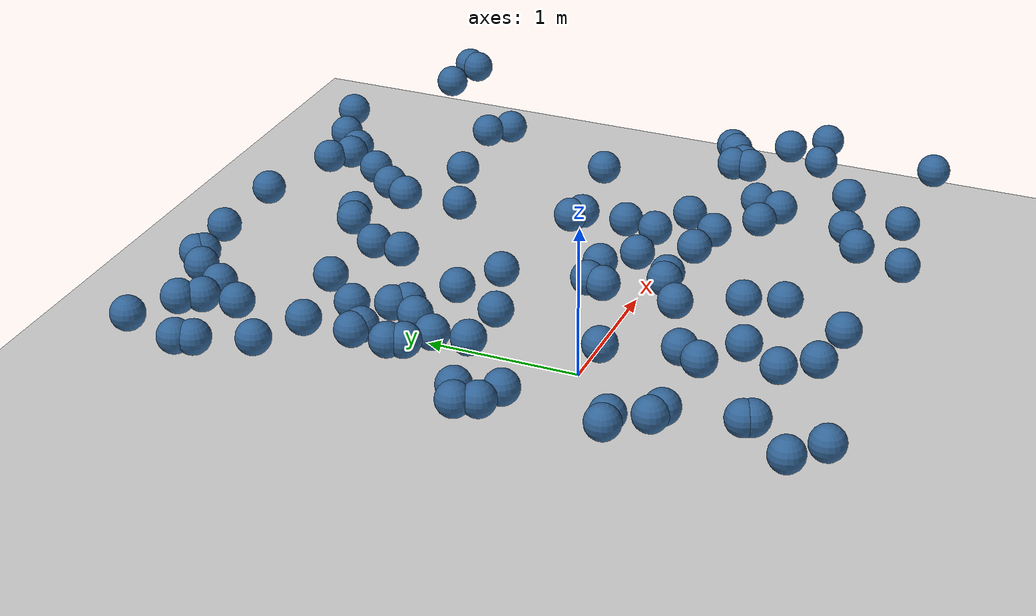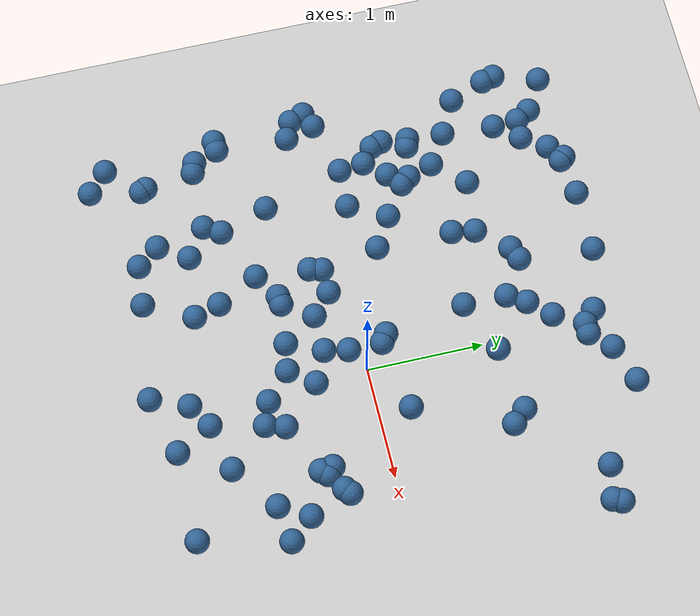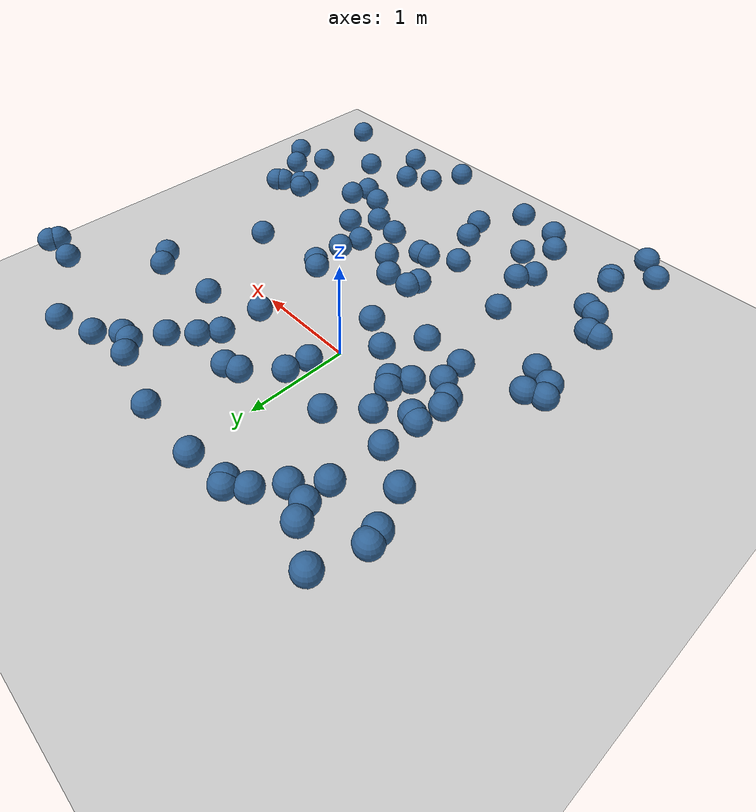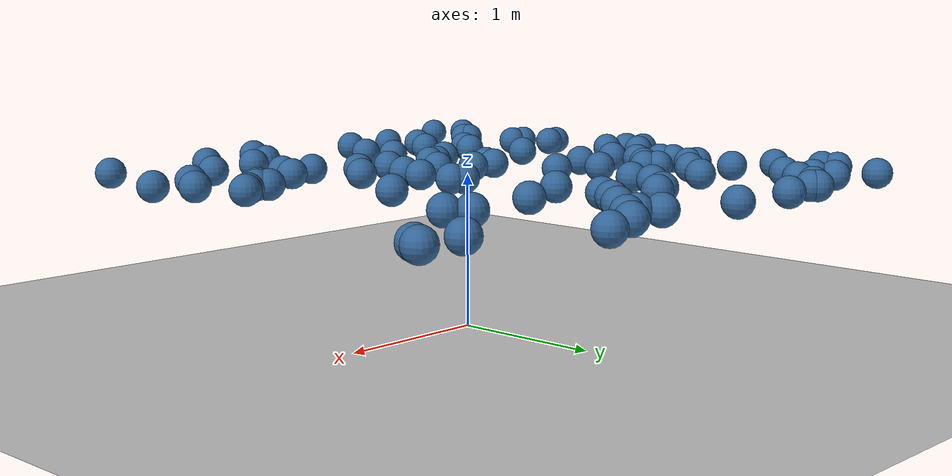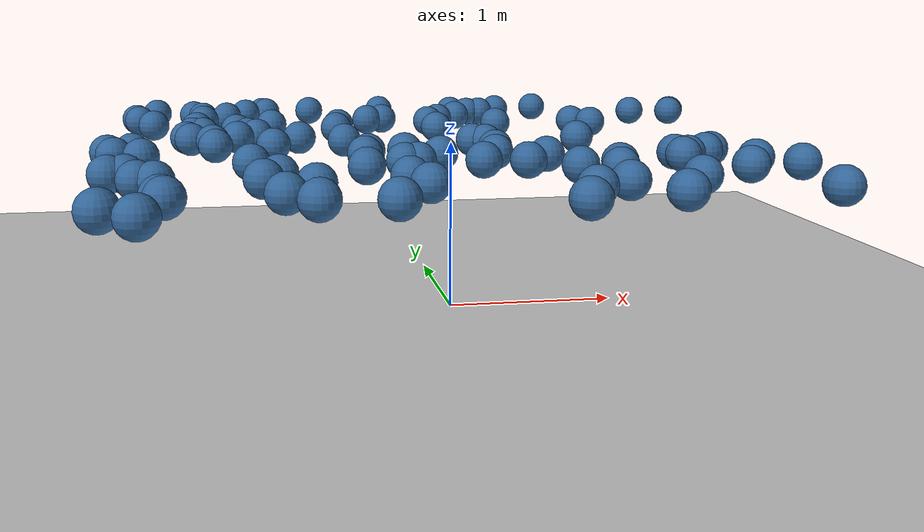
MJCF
<?xml version='1.0' encoding='utf-8'?>
<mujoco model="random_spheres">
  <option timestep="0.01" gravity="0 0 -9.81" />
  <worldbody>
    <geom name="floor" type="plane" size="50 50 0.1" pos="0 0 0" rgba="0.8 0.8 0.8 1" />
    <body name="sphere_0" pos="-0.346 -1.355 1.0">
      <geom type="sphere" size="0.1" rgba="0.2 0.4 0.6 1" />
      <freejoint />
    </body>
    <body name="sphere_1" pos="0.281 -1.854 1.0">
      <geom type="sphere" size="0.1" rgba="0.2 0.4 0.6 1" />
      <freejoint />
    </body>
    <body name="sphere_2" pos="0.045 1.147 1.0">
      <geom type="sphere" size="0.1" rgba="0.2 0.4 0.6 1" />
      <freejoint />
    </body>
    <body name="sphere_3" pos="-1.045 0.075 1.0">
      <geom type="sphere" size="0.1" rgba="0.2 0.4 0.6 1" />
      <freejoint />
    </body>
    <body name="sphere_4" pos="-0.732 1.946 1.0">
      <geom type="sphere" size="0.1" rgba="0.2 0.4 0.6 1" />
      <freejoint />
    </body>
    <body name="sphere_5" pos="1.003 1.976 1.0">
      <geom type="sphere" size="0.1" rgba="0.2 0.4 0.6 1" />
      <freejoint />
    </body>
    <body name="sphere_6" pos="0.758 -0.846 1.0">
      <geom type="sphere" size="0.1" rgba="0.2 0.4 0.6 1" />
      <freejoint />
    </body>
    <body name="sphere_7" pos="0.052 -0.690 1.0">
      <geom type="sphere" size="0.1" rgba="0.2 0.4 0.6 1" />
      <freejoint />
    </body>
    <body name="sphere_8" pos="-0.615 0.854 1.0">
      <geom type="sphere" size="0.1" rgba="0.2 0.4 0.6 1" />
      <freejoint />
    </body>
    <body name="sphere_9" pos="0.430 1.705 1.0">
      <geom type="sphere" size="0.1" rgba="0.2 0.4 0.6 1" />
      <freejoint />
    </body>
    <body name="sphere_10" pos="1.400 -1.055 1.0">
      <geom type="sphere" size="0.1" rgba="0.2 0.4 0.6 1" />
      <freejoint />
    </body>
    <body name="sphere_11" pos="-0.552 -0.358 1.0">
      <geom type="sphere" size="0.1" rgba="0.2 0.4 0.6 1" />
      <freejoint />
    </body>
    <body name="sphere_12" pos="-1.505 1.640 1.0">
      <geom type="sphere" size="0.1" rgba="0.2 0.4 0.6 1" />
      <freejoint />
    </body>
    <body name="sphere_13" pos="-1.401 0.293 1.0">
      <geom type="sphere" size="0.1" rgba="0.2 0.4 0.6 1" />
      <freejoint />
    </body>
    <body name="sphere_14" pos="-1.799 -0.867 1.0">
      <geom type="sphere" size="0.1" rgba="0.2 0.4 0.6 1" />
      <freejoint />
    </body>
    <body name="sphere_15" pos="-1.563 -1.554 1.0">
      <geom type="sphere" size="0.1" rgba="0.2 0.4 0.6 1" />
      <freejoint />
    </body>
    <body name="sphere_16" pos="-1.471 0.681 1.0">
      <geom type="sphere" size="0.1" rgba="0.2 0.4 0.6 1" />
      <freejoint />
    </body>
    <body name="sphere_17" pos="0.443 -0.528 1.0">
      <geom type="sphere" size="0.1" rgba="0.2 0.4 0.6 1" />
      <freejoint />
    </body>
    <body name="sphere_18" pos="-1.771 -0.275 1.0">
      <geom type="sphere" size="0.1" rgba="0.2 0.4 0.6 1" />
      <freejoint />
    </body>
    <body name="sphere_19" pos="-1.642 -1.967 1.0">
      <geom type="sphere" size="0.1" rgba="0.2 0.4 0.6 1" />
      <freejoint />
    </body>
    <body name="sphere_20" pos="-1.079 1.929 1.0">
      <geom type="sphere" size="0.1" rgba="0.2 0.4 0.6 1" />
      <freejoint />
    </body>
    <body name="sphere_21" pos="-1.337 1.628 1.0">
      <geom type="sphere" size="0.1" rgba="0.2 0.4 0.6 1" />
      <freejoint />
    </body>
    <body name="sphere_22" pos="1.945 1.517 1.0">
      <geom type="sphere" size="0.1" rgba="0.2 0.4 0.6 1" />
      <freejoint />
    </body>
    <body name="sphere_23" pos="1.540 -0.817 1.0">
      <geom type="sphere" size="0.1" rgba="0.2 0.4 0.6 1" />
      <freejoint />
    </body>
    <body name="sphere_24" pos="-1.124 -1.122 1.0">
      <geom type="sphere" size="0.1" rgba="0.2 0.4 0.6 1" />
      <freejoint />
    </body>
    <body name="sphere_25" pos="-0.297 -0.650 1.0">
      <geom type="sphere" size="0.1" rgba="0.2 0.4 0.6 1" />
      <freejoint />
    </body>
    <body name="sphere_26" pos="1.015 -1.338 1.0">
      <geom type="sphere" size="0.1" rgba="0.2 0.4 0.6 1" />
      <freejoint />
    </body>
    <body name="sphere_27" pos="-1.842 1.910 1.0">
      <geom type="sphere" size="0.1" rgba="0.2 0.4 0.6 1" />
      <freejoint />
    </body>
    <body name="sphere_28" pos="0.709 -1.003 1.0">
      <geom type="sphere" size="0.1" rgba="0.2 0.4 0.6 1" />
      <freejoint />
    </body>
    <body name="sphere_29" pos="1.424 -0.473 1.0">
      <geom type="sphere" size="0.1" rgba="0.2 0.4 0.6 1" />
      <freejoint />
    </body>
    <body name="sphere_30" pos="0.138 1.295 1.0">
      <geom type="sphere" size="0.1" rgba="0.2 0.4 0.6 1" />
      <freejoint />
    </body>
    <body name="sphere_31" pos="0.221 0.068 1.0">
      <geom type="sphere" size="0.1" rgba="0.2 0.4 0.6 1" />
      <freejoint />
    </body>
    <body name="sphere_32" pos="-1.970 -0.093 1.0">
      <geom type="sphere" size="0.1" rgba="0.2 0.4 0.6 1" />
      <freejoint />
    </body>
    <body name="sphere_33" pos="0.821 0.162 1.0">
      <geom type="sphere" size="0.1" rgba="0.2 0.4 0.6 1" />
      <freejoint />
    </body>
    <body name="sphere_34" pos="0.681 1.865 1.0">
      <geom type="sphere" size="0.1" rgba="0.2 0.4 0.6 1" />
      <freejoint />
    </body>
    <body name="sphere_35" pos="0.611 -1.431 1.0">
      <geom type="sphere" size="0.1" rgba="0.2 0.4 0.6 1" />
      <freejoint />
    </body>
    <body name="sphere_36" pos="1.977 1.586 1.0">
      <geom type="sphere" size="0.1" rgba="0.2 0.4 0.6 1" />
      <freejoint />
    </body>
    <body name="sphere_37" pos="-0.616 0.227 1.0">
      <geom type="sphere" size="0.1" rgba="0.2 0.4 0.6 1" />
      <freejoint />
    </body>
    <body name="sphere_38" pos="-1.254 0.462 1.0">
      <geom type="sphere" size="0.1" rgba="0.2 0.4 0.6 1" />
      <freejoint />
    </body>
    <body name="sphere_39" pos="-1.179 -0.585 1.0">
      <geom type="sphere" size="0.1" rgba="0.2 0.4 0.6 1" />
      <freejoint />
    </body>
    <body name="sphere_40" pos="-1.564 0.482 1.0">
      <geom type="sphere" size="0.1" rgba="0.2 0.4 0.6 1" />
      <freejoint />
    </body>
    <body name="sphere_41" pos="-1.815 -1.809 1.0">
      <geom type="sphere" size="0.1" rgba="0.2 0.4 0.6 1" />
      <freejoint />
    </body>
    <body name="sphere_42" pos="-1.380 0.088 1.0">
      <geom type="sphere" size="0.1" rgba="0.2 0.4 0.6 1" />
      <freejoint />
    </body>
    <body name="sphere_43" pos="0.324 1.800 1.0">
      <geom type="sphere" size="0.1" rgba="0.2 0.4 0.6 1" />
      <freejoint />
    </body>
    <body name="sphere_44" pos="1.175 -0.560 1.0">
      <geom type="sphere" size="0.1" rgba="0.2 0.4 0.6 1" />
      <freejoint />
    </body>
    <body name="sphere_45" pos="-0.254 1.332 1.0">
      <geom type="sphere" size="0.1" rgba="0.2 0.4 0.6 1" />
      <freejoint />
    </body>
    <body name="sphere_46" pos="1.660 1.575 1.0">
      <geom type="sphere" size="0.1" rgba="0.2 0.4 0.6 1" />
      <freejoint />
    </body>
    <body name="sphere_47" pos="-1.202 1.824 1.0">
      <geom type="sphere" size="0.1" rgba="0.2 0.4 0.6 1" />
      <freejoint />
    </body>
    <body name="sphere_48" pos="-1.638 -1.102 1.0">
      <geom type="sphere" size="0.1" rgba="0.2 0.4 0.6 1" />
      <freejoint />
    </body>
    <body name="sphere_49" pos="0.521 1.707 1.0">
      <geom type="sphere" size="0.1" rgba="0.2 0.4 0.6 1" />
      <freejoint />
    </body>
    <body name="sphere_50" pos="-1.263 0.841 1.0">
      <geom type="sphere" size="0.1" rgba="0.2 0.4 0.6 1" />
      <freejoint />
    </body>
    <body name="sphere_51" pos="-1.492 1.430 1.0">
      <geom type="sphere" size="0.1" rgba="0.2 0.4 0.6 1" />
      <freejoint />
    </body>
    <body name="sphere_52" pos="0.287 -0.731 1.0">
      <geom type="sphere" size="0.1" rgba="0.2 0.4 0.6 1" />
      <freejoint />
    </body>
    <body name="sphere_53" pos="0.408 -1.553 1.0">
      <geom type="sphere" size="0.1" rgba="0.2 0.4 0.6 1" />
      <freejoint />
    </body>
    <body name="sphere_54" pos="1.187 -0.660 1.0">
      <geom type="sphere" size="0.1" rgba="0.2 0.4 0.6 1" />
      <freejoint />
    </body>
    <body name="sphere_55" pos="-0.365 1.287 1.0">
      <geom type="sphere" size="0.1" rgba="0.2 0.4 0.6 1" />
      <freejoint />
    </body>
    <body name="sphere_56" pos="-0.525 -0.259 1.0">
      <geom type="sphere" size="0.1" rgba="0.2 0.4 0.6 1" />
      <freejoint />
    </body>
    <body name="sphere_57" pos="-1.533 0.396 1.0">
      <geom type="sphere" size="0.1" rgba="0.2 0.4 0.6 1" />
      <freejoint />
    </body>
    <body name="sphere_58" pos="-0.878 -1.289 1.0">
      <geom type="sphere" size="0.1" rgba="0.2 0.4 0.6 1" />
      <freejoint />
    </body>
    <body name="sphere_59" pos="0.152 0.116 1.0">
      <geom type="sphere" size="0.1" rgba="0.2 0.4 0.6 1" />
      <freejoint />
    </body>
    <body name="sphere_60" pos="0.515 -0.934 1.0">
      <geom type="sphere" size="0.1" rgba="0.2 0.4 0.6 1" />
      <freejoint />
    </body>
    <body name="sphere_61" pos="-0.893 -1.705 1.0">
      <geom type="sphere" size="0.1" rgba="0.2 0.4 0.6 1" />
      <freejoint />
    </body>
    <body name="sphere_62" pos="-0.588 -0.799 1.0">
      <geom type="sphere" size="0.1" rgba="0.2 0.4 0.6 1" />
      <freejoint />
    </body>
    <body name="sphere_63" pos="-0.547 -1.743 1.0">
      <geom type="sphere" size="0.1" rgba="0.2 0.4 0.6 1" />
      <freejoint />
    </body>
    <body name="sphere_64" pos="-1.884 -0.873 1.0">
      <geom type="sphere" size="0.1" rgba="0.2 0.4 0.6 1" />
      <freejoint />
    </body>
    <body name="sphere_65" pos="-1.726 -1.070 1.0">
      <geom type="sphere" size="0.1" rgba="0.2 0.4 0.6 1" />
      <freejoint />
    </body>
    <body name="sphere_66" pos="0.485 0.965 1.0">
      <geom type="sphere" size="0.1" rgba="0.2 0.4 0.6 1" />
      <freejoint />
    </body>
    <body name="sphere_67" pos="-1.956 1.548 1.0">
      <geom type="sphere" size="0.1" rgba="0.2 0.4 0.6 1" />
      <freejoint />
    </body>
    <body name="sphere_68" pos="-1.138 0.560 1.0">
      <geom type="sphere" size="0.1" rgba="0.2 0.4 0.6 1" />
      <freejoint />
    </body>
    <body name="sphere_69" pos="-1.840 -0.036 1.0">
      <geom type="sphere" size="0.1" rgba="0.2 0.4 0.6 1" />
      <freejoint />
    </body>
    <body name="sphere_70" pos="1.540 -1.730 1.0">
      <geom type="sphere" size="0.1" rgba="0.2 0.4 0.6 1" />
      <freejoint />
    </body>
    <body name="sphere_71" pos="-1.193 0.630 1.0">
      <geom type="sphere" size="0.1" rgba="0.2 0.4 0.6 1" />
      <freejoint />
    </body>
    <body name="sphere_72" pos="-1.537 0.704 1.0">
      <geom type="sphere" size="0.1" rgba="0.2 0.4 0.6 1" />
      <freejoint />
    </body>
    <body name="sphere_73" pos="-1.573 1.755 1.0">
      <geom type="sphere" size="0.1" rgba="0.2 0.4 0.6 1" />
      <freejoint />
    </body>
    <body name="sphere_74" pos="-1.923 -0.211 1.0">
      <geom type="sphere" size="0.1" rgba="0.2 0.4 0.6 1" />
      <freejoint />
    </body>
    <body name="sphere_75" pos="-0.879 0.381 1.0">
      <geom type="sphere" size="0.1" rgba="0.2 0.4 0.6 1" />
      <freejoint />
    </body>
    <body name="sphere_76" pos="-1.032 1.091 1.0">
      <geom type="sphere" size="0.1" rgba="0.2 0.4 0.6 1" />
      <freejoint />
    </body>
    <body name="sphere_77" pos="-1.582 -1.512 1.0">
      <geom type="sphere" size="0.1" rgba="0.2 0.4 0.6 1" />
      <freejoint />
    </body>
    <body name="sphere_78" pos="1.041 1.039 1.0">
      <geom type="sphere" size="0.1" rgba="0.2 0.4 0.6 1" />
      <freejoint />
    </body>
    <body name="sphere_79" pos="0.181 -0.403 1.0">
      <geom type="sphere" size="0.1" rgba="0.2 0.4 0.6 1" />
      <freejoint />
    </body>
    <body name="sphere_80" pos="1.710 -1.011 1.0">
      <geom type="sphere" size="0.1" rgba="0.2 0.4 0.6 1" />
      <freejoint />
    </body>
    <body name="sphere_81" pos="-0.136 -0.411 1.0">
      <geom type="sphere" size="0.1" rgba="0.2 0.4 0.6 1" />
      <freejoint />
    </body>
    <body name="sphere_82" pos="1.147 0.927 1.0">
      <geom type="sphere" size="0.1" rgba="0.2 0.4 0.6 1" />
      <freejoint />
    </body>
    <body name="sphere_83" pos="-1.929 1.449 1.0">
      <geom type="sphere" size="0.1" rgba="0.2 0.4 0.6 1" />
      <freejoint />
    </body>
    <body name="sphere_84" pos="1.376 -0.513 1.0">
      <geom type="sphere" size="0.1" rgba="0.2 0.4 0.6 1" />
      <freejoint />
    </body>
    <body name="sphere_85" pos="0.044 0.789 1.0">
      <geom type="sphere" size="0.1" rgba="0.2 0.4 0.6 1" />
      <freejoint />
    </body>
    <body name="sphere_86" pos="-1.522 1.003 1.0">
      <geom type="sphere" size="0.1" rgba="0.2 0.4 0.6 1" />
      <freejoint />
    </body>
    <body name="sphere_87" pos="0.296 1.467 1.0">
      <geom type="sphere" size="0.1" rgba="0.2 0.4 0.6 1" />
      <freejoint />
    </body>
    <body name="sphere_88" pos="-1.054 1.898 1.0">
      <geom type="sphere" size="0.1" rgba="0.2 0.4 0.6 1" />
      <freejoint />
    </body>
    <body name="sphere_89" pos="0.221 -0.208 1.0">
      <geom type="sphere" size="0.1" rgba="0.2 0.4 0.6 1" />
      <freejoint />
    </body>
    <body name="sphere_90" pos="-1.031 -1.527 1.0">
      <geom type="sphere" size="0.1" rgba="0.2 0.4 0.6 1" />
      <freejoint />
    </body>
    <body name="sphere_91" pos="-0.584 1.043 1.0">
      <geom type="sphere" size="0.1" rgba="0.2 0.4 0.6 1" />
      <freejoint />
    </body>
    <body name="sphere_92" pos="-1.811 1.151 1.0">
      <geom type="sphere" size="0.1" rgba="0.2 0.4 0.6 1" />
      <freejoint />
    </body>
    <body name="sphere_93" pos="1.232 -0.607 1.0">
      <geom type="sphere" size="0.1" rgba="0.2 0.4 0.6 1" />
      <freejoint />
    </body>
    <body name="sphere_94" pos="-0.373 -0.660 1.0">
      <geom type="sphere" size="0.1" rgba="0.2 0.4 0.6 1" />
      <freejoint />
    </body>
    <body name="sphere_95" pos="-1.045 -0.987 1.0">
      <geom type="sphere" size="0.1" rgba="0.2 0.4 0.6 1" />
      <freejoint />
    </body>
    <body name="sphere_96" pos="-0.412 -1.137 1.0">
      <geom type="sphere" size="0.1" rgba="0.2 0.4 0.6 1" />
      <freejoint />
    </body>
    <body name="sphere_97" pos="0.780 -1.728 1.0">
      <geom type="sphere" size="0.1" rgba="0.2 0.4 0.6 1" />
      <freejoint />
    </body>
    <body name="sphere_98" pos="-0.315 -0.252 1.0">
      <geom type="sphere" size="0.1" rgba="0.2 0.4 0.6 1" />
      <freejoint />
    </body>
    <body name="sphere_99" pos="-0.203 1.941 1.0">
      <geom type="sphere" size="0.1" rgba="0.2 0.4 0.6 1" />
      <freejoint />
    </body>
  </worldbody>
</mujoco>
